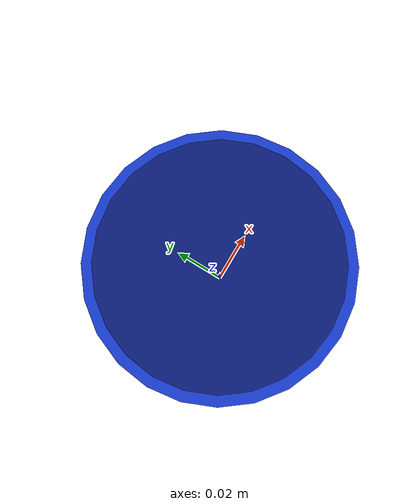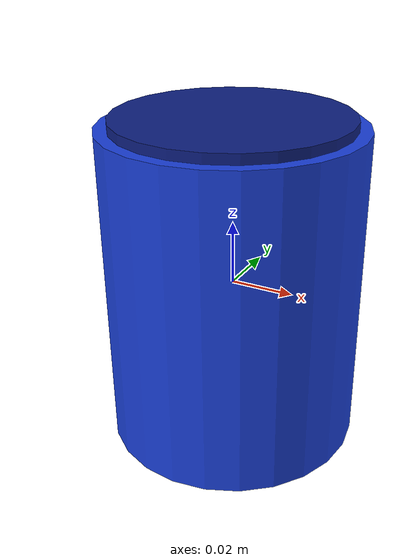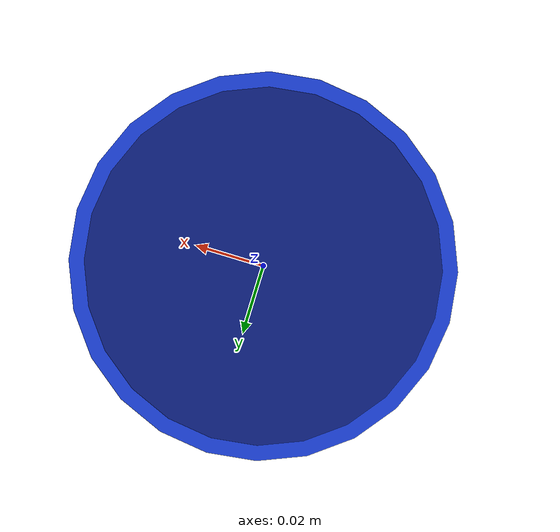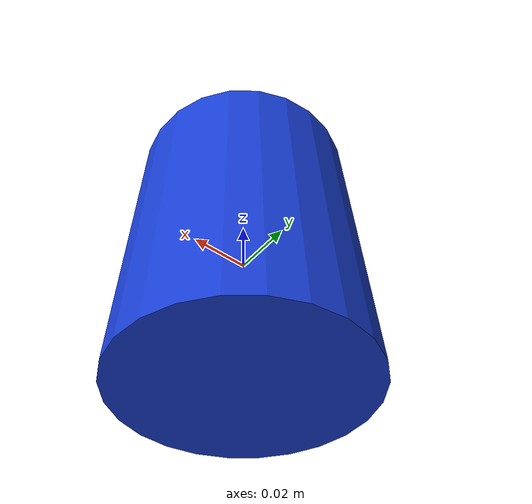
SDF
<?xml version="1.0"?>
<sdf version="1.9">
  <model name="bowl">
    <link name="link">
      <inertial>
        <mass>0.20</mass>
        <inertia>
          <ixx>2.47e-4</ixx><iyy>2.47e-4</iyy><izz>1.6e-4</izz>
          <ixy>0</ixy><ixz>0</ixz><iyz>0</iyz>
        </inertia>
      </inertial>
      <collision name="col">
        <geometry><cylinder><radius>0.04</radius><length>0.10</length></cylinder></geometry>
        <surface>
          <friction><ode><mu>1.2</mu><mu2>1.2</mu2></ode></friction>
        </surface>
      </collision>
      <visual name="body">
        <geometry><cylinder><radius>0.04</radius><length>0.10</length></cylinder></geometry>
        <material>
          <ambient>0.1 0.25 0.85 1</ambient>
          <diffuse>0.1 0.25 0.85 1</diffuse>
          <specular>0.3 0.3 0.3 1</specular>
        </material>
      </visual>
      <visual name="rim">
        <pose>0 0 0.051 0 0 0</pose>
        <geometry><cylinder><radius>0.036</radius><length>0.004</length></cylinder></geometry>
        <material>
          <ambient>0.05 0.12 0.5 1</ambient>
          <diffuse>0.05 0.12 0.5 1</diffuse>
        </material>
      </visual>
    </link>
  </model>
</sdf>
